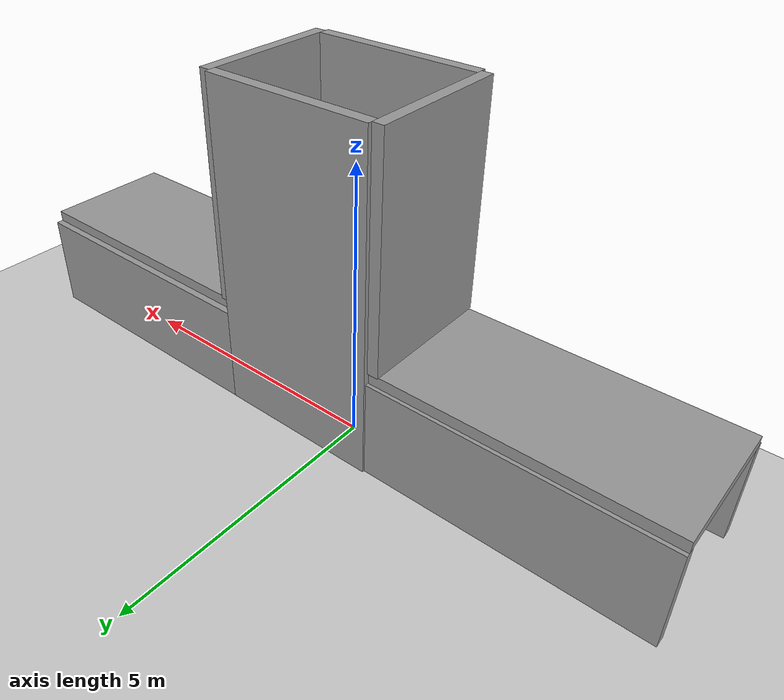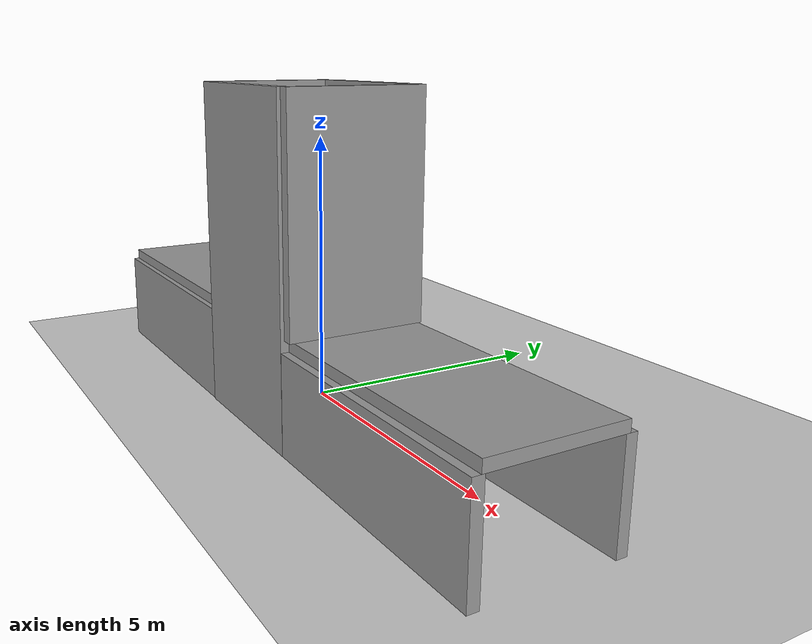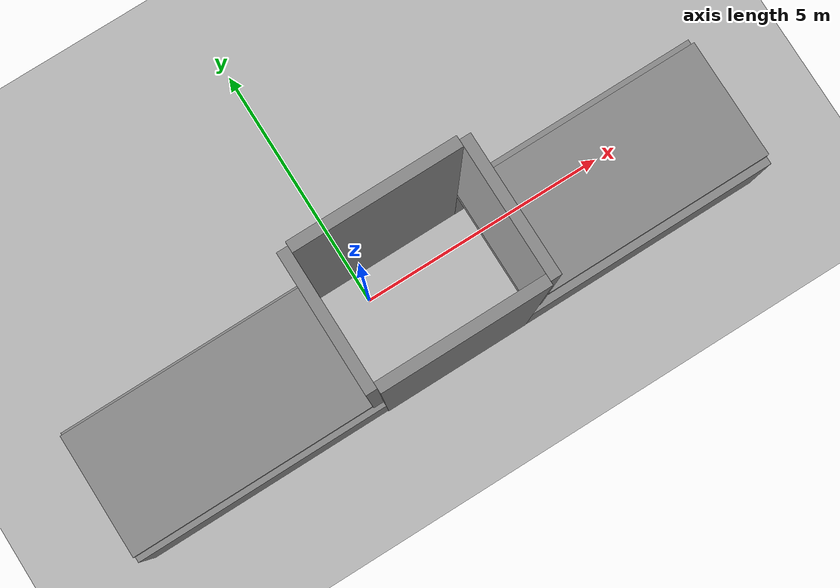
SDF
<sdf version="1.6">
 <world name="default">
  <light name="sun" type="directional">
   <pose>0 0 10 0 -0 0</pose>
   <diffuse>0.8 0.8 0.8 1</diffuse>
   <specular>0.2 0.2 0.2 1</specular>
   <attenuation>
    <range>1000</range>
    <constant>0.9</constant>
    <linear>0.01</linear>
    <quadratic>0.001</quadratic>
   </attenuation>
   <direction>-0.5 0.1 -0.9</direction>
  </light>
  <model name="ground_plane">
   <static>1</static>
   <link name="link">
    <collision name="collision">
     <geometry><plane><normal>0 0 1</normal><size>100 100</size></plane></geometry>
     <surface><friction><ode><mu>100</mu><mu2>50</mu2></ode></friction></surface>
    </collision>
    <visual name="visual">
     <cast_shadows>0</cast_shadows>
     <geometry><plane><normal>0 0 1</normal><size>100 100</size></plane></geometry>
     <material>
      <script><uri>file://media/materials/scripts/gazebo.material</uri><name>Gazebo/Grey</name></script>
     </material>
    </visual>
   </link>
  </model>
  <gravity>0 0 -9.8</gravity>
  <magnetic_field>6e-06 2.3e-05 -4.2e-05</magnetic_field>
  <atmosphere type="adiabatic"/>
  <physics name="default_physics" default="0" type="ode">
   <max_step_size>0.002</max_step_size>
   <real_time_factor>1</real_time_factor>
   <real_time_update_rate>500</real_time_update_rate>
  </physics>
  <scene><ambient>0.4 0.4 0.4 1</ambient><background>0.7 0.7 0.7 1</background><shadows>1</shadows></scene>
  <spherical_coordinates>
   <surface_model>EARTH_WGS84</surface_model>
   <latitude_deg>0</latitude_deg>
   <longitude_deg>0</longitude_deg>
   <elevation>0</elevation>
   <heading_deg>0</heading_deg>
  </spherical_coordinates>
  <model name="tunel">
   <link name="link_0">
    <inertial>
     <mass>1</mass>
     <inertia>
      <ixx>0.166667</ixx>
      <ixy>0</ixy>
      <ixz>0</ixz>
      <iyy>0.166667</iyy>
      <iyz>0</iyz>
      <izz>0.166667</izz>
     </inertia>
    </inertial>
    <pose>4 1.217 -1.24 -0 -0 -0</pose>
    <visual name="visual">
     <geometry><box><size>5 0.2 1.8</size></box></geometry>
     <material>
      <lighting>1</lighting>
      <script><uri>file://media/materials/scripts/gazebo.material</uri><name>Gazebo/Grey</name></script>
      <shader type="pixel"><normal_map>__default__</normal_map></shader>
      <ambient>0.3 0.3 0.3 1</ambient>
      <diffuse>0.7 0.7 0.7 1</diffuse>
      <specular>0.01 0.01 0.01 1</specular>
      <emissive>0 0 0 1</emissive>
     </material>
    </visual>
    <collision name="collision">
     <geometry><box><size>5 0.2 1.8</size></box></geometry>
     <surface>
      <friction>
       <ode><mu>1</mu><mu2>1</mu2><fdir1>0 0 0</fdir1><slip1>0</slip1><slip2>0</slip2></ode>
       <torsional>
        <coefficient>1</coefficient>
        <patch_radius>0</patch_radius>
        <surface_radius>0</surface_radius>
        <use_patch_radius>1</use_patch_radius>
        <ode><slip>0</slip></ode>
       </torsional>
      </friction>
      <bounce><restitution_coefficient>0</restitution_coefficient><threshold>1e+06</threshold></bounce>
      <contact>
       <collide_without_contact>0</collide_without_contact>
       <collide_without_contact_bitmask>1</collide_without_contact_bitmask>
       <collide_bitmask>1</collide_bitmask>
       <ode>
        <soft_cfm>0</soft_cfm>
        <soft_erp>0.2</soft_erp>
        <kp>1e+13</kp>
        <kd>1</kd>
        <max_vel>0.01</max_vel>
        <min_depth>0</min_depth>
       </ode>
       <bullet>
        <split_impulse>1</split_impulse>
        <split_impulse_penetration_threshold>-0.01</split_impulse_penetration_threshold>
        <soft_cfm>0</soft_cfm>
        <soft_erp>0.2</soft_erp>
        <kp>1e+13</kp>
        <kd>1</kd>
       </bullet>
      </contact>
     </surface>
    </collision>
   </link>
   <link name="link_0_clone">
    <inertial>
     <mass>1</mass>
     <inertia>
      <ixx>0.166667</ixx>
      <ixy>0</ixy>
      <ixz>0</ixz>
      <iyy>0.166667</iyy>
      <iyz>0</iyz>
      <izz>0.166667</izz>
     </inertia>
    </inertial>
    <pose>4 -1.23671 -1.24 -0 -0 -0</pose>
    <visual name="visual">
     <geometry><box><size>5 0.2 1.8</size></box></geometry>
     <material>
      <lighting>1</lighting>
      <script><uri>file://media/materials/scripts/gazebo.material</uri><name>Gazebo/Grey</name></script>
      <shader type="pixel"><normal_map>__default__</normal_map></shader>
      <ambient>0.3 0.3 0.3 1</ambient>
      <diffuse>0.7 0.7 0.7 1</diffuse>
      <specular>0.01 0.01 0.01 1</specular>
      <emissive>0 0 0 1</emissive>
     </material>
    </visual>
    <collision name="collision">
     <geometry><box><size>5 0.2 1.8</size></box></geometry>
     <surface>
      <friction>
       <ode><mu>1</mu><mu2>1</mu2><fdir1>0 0 0</fdir1><slip1>0</slip1><slip2>0</slip2></ode>
       <torsional>
        <coefficient>1</coefficient>
        <patch_radius>0</patch_radius>
        <surface_radius>0</surface_radius>
        <use_patch_radius>1</use_patch_radius>
        <ode><slip>0</slip></ode>
       </torsional>
      </friction>
      <bounce><restitution_coefficient>0</restitution_coefficient><threshold>1e+06</threshold></bounce>
      <contact>
       <collide_without_contact>0</collide_without_contact>
       <collide_without_contact_bitmask>1</collide_without_contact_bitmask>
       <collide_bitmask>1</collide_bitmask>
       <ode>
        <soft_cfm>0</soft_cfm>
        <soft_erp>0.2</soft_erp>
        <kp>1e+13</kp>
        <kd>1</kd>
        <max_vel>0.01</max_vel>
        <min_depth>0</min_depth>
       </ode>
       <bullet>
        <split_impulse>1</split_impulse>
        <split_impulse_penetration_threshold>-0.01</split_impulse_penetration_threshold>
        <soft_cfm>0</soft_cfm>
        <soft_erp>0.2</soft_erp>
        <kp>1e+13</kp>
        <kd>1</kd>
       </bullet>
      </contact>
     </surface>
    </collision>
   </link>
   <link name="link_0_clone_0">
    <inertial>
     <mass>1</mass>
     <inertia>
      <ixx>0.166667</ixx>
      <ixy>0</ixy>
      <ixz>0</ixz>
      <iyy>0.166667</iyy>
      <iyz>0</iyz>
      <izz>0.166667</izz>
     </inertia>
    </inertial>
    <pose>-4 1.18179 -1.24 -0 -0 -0</pose>
    <visual name="visual">
     <geometry><box><size>5 0.2 1.8</size></box></geometry>
     <material>
      <lighting>1</lighting>
      <script><uri>file://media/materials/scripts/gazebo.material</uri><name>Gazebo/Grey</name></script>
      <shader type="pixel"><normal_map>__default__</normal_map></shader>
      <ambient>0.3 0.3 0.3 1</ambient>
      <diffuse>0.7 0.7 0.7 1</diffuse>
      <specular>0.01 0.01 0.01 1</specular>
      <emissive>0 0 0 1</emissive>
     </material>
    </visual>
    <collision name="collision">
     <geometry><box><size>5 0.2 1.8</size></box></geometry>
     <surface>
      <friction>
       <ode><mu>1</mu><mu2>1</mu2><fdir1>0 0 0</fdir1><slip1>0</slip1><slip2>0</slip2></ode>
       <torsional>
        <coefficient>1</coefficient>
        <patch_radius>0</patch_radius>
        <surface_radius>0</surface_radius>
        <use_patch_radius>1</use_patch_radius>
        <ode><slip>0</slip></ode>
       </torsional>
      </friction>
      <bounce><restitution_coefficient>0</restitution_coefficient><threshold>1e+06</threshold></bounce>
      <contact>
       <collide_without_contact>0</collide_without_contact>
       <collide_without_contact_bitmask>1</collide_without_contact_bitmask>
       <collide_bitmask>1</collide_bitmask>
       <ode>
        <soft_cfm>0</soft_cfm>
        <soft_erp>0.2</soft_erp>
        <kp>1e+13</kp>
        <kd>1</kd>
        <max_vel>0.01</max_vel>
        <min_depth>0</min_depth>
       </ode>
       <bullet>
        <split_impulse>1</split_impulse>
        <split_impulse_penetration_threshold>-0.01</split_impulse_penetration_threshold>
        <soft_cfm>0</soft_cfm>
        <soft_erp>0.2</soft_erp>
        <kp>1e+13</kp>
        <kd>1</kd>
       </bullet>
      </contact>
     </surface>
    </collision>
   </link>
   <link name="link_0_clone_clone">
    <inertial>
     <mass>1</mass>
     <inertia>
      <ixx>0.166667</ixx>
      <ixy>0</ixy>
      <ixz>0</ixz>
      <iyy>0.166667</iyy>
      <iyz>0</iyz>
      <izz>0.166667</izz>
     </inertia>
    </inertial>
    <pose>-4 -1.22429 -1.24 -0 -0 -0</pose>
    <visual name="visual">
     <geometry><box><size>5 0.2 1.8</size></box></geometry>
     <material>
      <lighting>1</lighting>
      <script><uri>file://media/materials/scripts/gazebo.material</uri><name>Gazebo/Grey</name></script>
      <shader type="pixel"><normal_map>__default__</normal_map></shader>
      <ambient>0.3 0.3 0.3 1</ambient>
      <diffuse>0.7 0.7 0.7 1</diffuse>
      <specular>0.01 0.01 0.01 1</specular>
      <emissive>0 0 0 1</emissive>
     </material>
    </visual>
    <collision name="collision">
     <geometry><box><size>5 0.2 1.8</size></box></geometry>
     <surface>
      <friction>
       <ode><mu>1</mu><mu2>1</mu2><fdir1>0 0 0</fdir1><slip1>0</slip1><slip2>0</slip2></ode>
       <torsional>
        <coefficient>1</coefficient>
        <patch_radius>0</patch_radius>
        <surface_radius>0</surface_radius>
        <use_patch_radius>1</use_patch_radius>
        <ode><slip>0</slip></ode>
       </torsional>
      </friction>
      <bounce><restitution_coefficient>0</restitution_coefficient><threshold>1e+06</threshold></bounce>
      <contact>
       <collide_without_contact>0</collide_without_contact>
       <collide_without_contact_bitmask>1</collide_without_contact_bitmask>
       <collide_bitmask>1</collide_bitmask>
       <ode>
        <soft_cfm>0</soft_cfm>
        <soft_erp>0.2</soft_erp>
        <kp>1e+13</kp>
        <kd>1</kd>
        <max_vel>0.01</max_vel>
        <min_depth>0</min_depth>
       </ode>
       <bullet>
        <split_impulse>1</split_impulse>
        <split_impulse_penetration_threshold>-0.01</split_impulse_penetration_threshold>
        <soft_cfm>0</soft_cfm>
        <soft_erp>0.2</soft_erp>
        <kp>1e+13</kp>
        <kd>1</kd>
       </bullet>
      </contact>
     </surface>
    </collision>
   </link>
   <link name="link_1">
    <inertial>
     <mass>1.29515</mass>
     <inertia><ixx>0.615602</ixx><ixy>0</ixy><ixz>0</ixz><iyy>2.70255</iyy><iyz>0</iyz><izz>3.30952</izz></inertia>
    </inertial>
    <pose>4 0 -0.24 -0 -0 -0</pose>
    <visual name="visual">
     <geometry><box><size>5 2.37986 0.2</size></box></geometry>
     <material>
      <lighting>1</lighting>
      <script><uri>file://media/materials/scripts/gazebo.material</uri><name>Gazebo/Grey</name></script>
      <shader type="pixel"><normal_map>__default__</normal_map></shader>
      <ambient>0.3 0.3 0.3 1</ambient>
      <diffuse>0.7 0.7 0.7 1</diffuse>
      <specular>0.01 0.01 0.01 1</specular>
      <emissive>0 0 0 1</emissive>
     </material>
    </visual>
    <collision name="collision">
     <geometry><box><size>5 2.37986 0.2</size></box></geometry>
     <surface>
      <friction>
       <ode><mu>1</mu><mu2>1</mu2><fdir1>0 0 0</fdir1><slip1>0</slip1><slip2>0</slip2></ode>
       <torsional>
        <coefficient>1</coefficient>
        <patch_radius>0</patch_radius>
        <surface_radius>0</surface_radius>
        <use_patch_radius>1</use_patch_radius>
        <ode><slip>0</slip></ode>
       </torsional>
      </friction>
      <bounce><restitution_coefficient>0</restitution_coefficient><threshold>1e+06</threshold></bounce>
      <contact>
       <collide_without_contact>0</collide_without_contact>
       <collide_without_contact_bitmask>1</collide_without_contact_bitmask>
       <collide_bitmask>1</collide_bitmask>
       <ode>
        <soft_cfm>0</soft_cfm>
        <soft_erp>0.2</soft_erp>
        <kp>1e+13</kp>
        <kd>1</kd>
        <max_vel>0.01</max_vel>
        <min_depth>0</min_depth>
       </ode>
       <bullet>
        <split_impulse>1</split_impulse>
        <split_impulse_penetration_threshold>-0.01</split_impulse_penetration_threshold>
        <soft_cfm>0</soft_cfm>
        <soft_erp>0.2</soft_erp>
        <kp>1e+13</kp>
        <kd>1</kd>
       </bullet>
      </contact>
     </surface>
    </collision>
   </link>
   <link name="link_1_clone">
    <inertial>
     <mass>1.32237</mass>
     <inertia><ixx>0.655044</ixx><ixy>0</ixy><ixz>0</ixz><iyy>2.75935</iyy><iyz>0</iyz><izz>3.40558</izz></inertia>
    </inertial>
    <pose>-4 -0 -0.24 -0 -0 -0</pose>
    <visual name="visual">
     <geometry><box><size>5 2.42987 0.2</size></box></geometry>
     <material>
      <lighting>1</lighting>
      <script><uri>file://media/materials/scripts/gazebo.material</uri><name>Gazebo/Grey</name></script>
      <shader type="pixel"><normal_map>__default__</normal_map></shader>
      <ambient>0.3 0.3 0.3 1</ambient>
      <diffuse>0.7 0.7 0.7 1</diffuse>
      <specular>0.01 0.01 0.01 1</specular>
      <emissive>0 0 0 1</emissive>
     </material>
    </visual>
    <collision name="collision">
     <geometry><box><size>5 2.42987 0.2</size></box></geometry>
     <surface>
      <friction>
       <ode><mu>1</mu><mu2>1</mu2><fdir1>0 0 0</fdir1><slip1>0</slip1><slip2>0</slip2></ode>
       <torsional>
        <coefficient>1</coefficient>
        <patch_radius>0</patch_radius>
        <surface_radius>0</surface_radius>
        <use_patch_radius>1</use_patch_radius>
        <ode><slip>0</slip></ode>
       </torsional>
      </friction>
      <bounce><restitution_coefficient>0</restitution_coefficient><threshold>1e+06</threshold></bounce>
      <contact>
       <collide_without_contact>0</collide_without_contact>
       <collide_without_contact_bitmask>1</collide_without_contact_bitmask>
       <collide_bitmask>1</collide_bitmask>
       <ode>
        <soft_cfm>0</soft_cfm>
        <soft_erp>0.2</soft_erp>
        <kp>1e+13</kp>
        <kd>1</kd>
        <max_vel>0.01</max_vel>
        <min_depth>0</min_depth>
       </ode>
       <bullet>
        <split_impulse>1</split_impulse>
        <split_impulse_penetration_threshold>-0.01</split_impulse_penetration_threshold>
        <soft_cfm>0</soft_cfm>
        <soft_erp>0.2</soft_erp>
        <kp>1e+13</kp>
        <kd>1</kd>
       </bullet>
      </contact>
     </surface>
    </collision>
   </link>
   <link name="link_2">
    <inertial>
     <mass>2.08237</mass>
     <inertia><ixx>6.19248</ixx><ixy>0</ixy><ixz>0</ixz><iyy>7.0406</iyy><iyz>0</iyz><izz>0.856734</izz></inertia>
    </inertial>
    <pose>-0 -1.23923 0.86 -0 -0 -0</pose>
    <visual name="visual">
     <geometry><box><size>3 0.2 6</size></box></geometry>
     <material>
      <lighting>1</lighting>
      <script><uri>file://media/materials/scripts/gazebo.material</uri><name>Gazebo/Grey</name></script>
      <shader type="pixel"><normal_map>__default__</normal_map></shader>
      <ambient>0.3 0.3 0.3 1</ambient>
      <diffuse>0.7 0.7 0.7 1</diffuse>
      <specular>0.01 0.01 0.01 1</specular>
      <emissive>0 0 0 1</emissive>
     </material>
    </visual>
    <collision name="collision">
     <geometry><box><size>3 0.2 6</size></box></geometry>
     <surface>
      <friction>
       <ode><mu>1</mu><mu2>1</mu2><fdir1>0 0 0</fdir1><slip1>0</slip1><slip2>0</slip2></ode>
       <torsional>
        <coefficient>1</coefficient>
        <patch_radius>0</patch_radius>
        <surface_radius>0</surface_radius>
        <use_patch_radius>1</use_patch_radius>
        <ode><slip>0</slip></ode>
       </torsional>
      </friction>
      <bounce><restitution_coefficient>0</restitution_coefficient><threshold>1e+06</threshold></bounce>
      <contact>
       <collide_without_contact>0</collide_without_contact>
       <collide_without_contact_bitmask>1</collide_without_contact_bitmask>
       <collide_bitmask>1</collide_bitmask>
       <ode>
        <soft_cfm>0</soft_cfm>
        <soft_erp>0.2</soft_erp>
        <kp>1e+13</kp>
        <kd>1</kd>
        <max_vel>0.01</max_vel>
        <min_depth>0</min_depth>
       </ode>
       <bullet>
        <split_impulse>1</split_impulse>
        <split_impulse_penetration_threshold>-0.01</split_impulse_penetration_threshold>
        <soft_cfm>0</soft_cfm>
        <soft_erp>0.2</soft_erp>
        <kp>1e+13</kp>
        <kd>1</kd>
       </bullet>
      </contact>
     </surface>
    </collision>
   </link>
   <link name="link_2_clone">
    <inertial>
     <mass>2.08237</mass>
     <inertia><ixx>6.19248</ixx><ixy>0</ixy><ixz>0</ixz><iyy>7.0406</iyy><iyz>0</iyz><izz>0.856734</izz></inertia>
    </inertial>
    <pose>0 1.2186 0.86 -0 -0 -0</pose>
    <visual name="visual">
     <geometry><box><size>3 0.2 6</size></box></geometry>
     <material>
      <lighting>1</lighting>
      <script><uri>file://media/materials/scripts/gazebo.material</uri><name>Gazebo/Grey</name></script>
      <shader type="pixel"><normal_map>__default__</normal_map></shader>
      <ambient>0.3 0.3 0.3 1</ambient>
      <diffuse>0.7 0.7 0.7 1</diffuse>
      <specular>0.01 0.01 0.01 1</specular>
      <emissive>0 0 0 1</emissive>
     </material>
    </visual>
    <collision name="collision">
     <geometry><box><size>3 0.2 6</size></box></geometry>
     <surface>
      <friction>
       <ode><mu>1</mu><mu2>1</mu2><fdir1>0 0 0</fdir1><slip1>0</slip1><slip2>0</slip2></ode>
       <torsional>
        <coefficient>1</coefficient>
        <patch_radius>0</patch_radius>
        <surface_radius>0</surface_radius>
        <use_patch_radius>1</use_patch_radius>
        <ode><slip>0</slip></ode>
       </torsional>
      </friction>
      <bounce><restitution_coefficient>0</restitution_coefficient><threshold>1e+06</threshold></bounce>
      <contact>
       <collide_without_contact>0</collide_without_contact>
       <collide_without_contact_bitmask>1</collide_without_contact_bitmask>
       <collide_bitmask>1</collide_bitmask>
       <ode>
        <soft_cfm>0</soft_cfm>
        <soft_erp>0.2</soft_erp>
        <kp>1e+13</kp>
        <kd>1</kd>
        <max_vel>0.01</max_vel>
        <min_depth>0</min_depth>
       </ode>
       <bullet>
        <split_impulse>1</split_impulse>
        <split_impulse_penetration_threshold>-0.01</split_impulse_penetration_threshold>
        <soft_cfm>0</soft_cfm>
        <soft_erp>0.2</soft_erp>
        <kp>1e+13</kp>
        <kd>1</kd>
       </bullet>
      </contact>
     </surface>
    </collision>
   </link>
   <link name="link_3">
    <inertial>
     <mass>1.83697</mass>
     <inertia><ixx>3.40291</ixx><ixy>0</ixy><ixz>0</ixz><iyy>2.45541</iyy><iyz>0</iyz><izz>0.959746</izz></inertia>
    </inertial>
    <pose>-1.6 -0 1.86 -0 -0 -0</pose>
    <visual name="visual">
     <geometry><box><size>0.2 2.49591 4</size></box></geometry>
     <material>
      <lighting>1</lighting>
      <script><uri>file://media/materials/scripts/gazebo.material</uri><name>Gazebo/Grey</name></script>
      <shader type="pixel"><normal_map>__default__</normal_map></shader>
      <ambient>0.3 0.3 0.3 1</ambient>
      <diffuse>0.7 0.7 0.7 1</diffuse>
      <specular>0.01 0.01 0.01 1</specular>
      <emissive>0 0 0 1</emissive>
     </material>
    </visual>
    <collision name="collision">
     <geometry><box><size>0.2 2.49591 4</size></box></geometry>
     <surface>
      <friction>
       <ode><mu>1</mu><mu2>1</mu2><fdir1>0 0 0</fdir1><slip1>0</slip1><slip2>0</slip2></ode>
       <torsional>
        <coefficient>1</coefficient>
        <patch_radius>0</patch_radius>
        <surface_radius>0</surface_radius>
        <use_patch_radius>1</use_patch_radius>
        <ode><slip>0</slip></ode>
       </torsional>
      </friction>
      <bounce><restitution_coefficient>0</restitution_coefficient><threshold>1e+06</threshold></bounce>
      <contact>
       <collide_without_contact>0</collide_without_contact>
       <collide_without_contact_bitmask>1</collide_without_contact_bitmask>
       <collide_bitmask>1</collide_bitmask>
       <ode>
        <soft_cfm>0</soft_cfm>
        <soft_erp>0.2</soft_erp>
        <kp>1e+13</kp>
        <kd>1</kd>
        <max_vel>0.01</max_vel>
        <min_depth>0</min_depth>
       </ode>
       <bullet>
        <split_impulse>1</split_impulse>
        <split_impulse_penetration_threshold>-0.01</split_impulse_penetration_threshold>
        <soft_cfm>0</soft_cfm>
        <soft_erp>0.2</soft_erp>
        <kp>1e+13</kp>
        <kd>1</kd>
       </bullet>
      </contact>
     </surface>
    </collision>
   </link>
   <link name="link_3_clone">
    <inertial>
     <mass>1.85061</mass>
     <inertia><ixx>3.44252</ixx><ixy>0</ixy><ixz>0</ixz><iyy>2.47365</iyy><iyz>0</iyz><izz>0.981207</izz></inertia>
    </inertial>
    <pose>1.6 -0.015774 1.86 -0 -0 -0</pose>
    <visual name="visual">
     <geometry><box><size>0.2 2.51445 4</size></box></geometry>
     <material>
      <lighting>1</lighting>
      <script><uri>file://media/materials/scripts/gazebo.material</uri><name>Gazebo/Grey</name></script>
      <shader type="pixel"><normal_map>__default__</normal_map></shader>
      <ambient>0.3 0.3 0.3 1</ambient>
      <diffuse>0.7 0.7 0.7 1</diffuse>
      <specular>0.01 0.01 0.01 1</specular>
      <emissive>0 0 0 1</emissive>
     </material>
    </visual>
    <collision name="collision">
     <geometry><box><size>0.2 2.51445 4</size></box></geometry>
     <surface>
      <friction>
       <ode><mu>1</mu><mu2>1</mu2><fdir1>0 0 0</fdir1><slip1>0</slip1><slip2>0</slip2></ode>
       <torsional>
        <coefficient>1</coefficient>
        <patch_radius>0</patch_radius>
        <surface_radius>0</surface_radius>
        <use_patch_radius>1</use_patch_radius>
        <ode><slip>0</slip></ode>
       </torsional>
      </friction>
      <bounce><restitution_coefficient>0</restitution_coefficient><threshold>1e+06</threshold></bounce>
      <contact>
       <collide_without_contact>0</collide_without_contact>
       <collide_without_contact_bitmask>1</collide_without_contact_bitmask>
       <collide_bitmask>1</collide_bitmask>
       <ode>
        <soft_cfm>0</soft_cfm>
        <soft_erp>0.2</soft_erp>
        <kp>1e+13</kp>
        <kd>1</kd>
        <max_vel>0.01</max_vel>
        <min_depth>0</min_depth>
       </ode>
       <bullet>
        <split_impulse>1</split_impulse>
        <split_impulse_penetration_threshold>-0.01</split_impulse_penetration_threshold>
        <soft_cfm>0</soft_cfm>
        <soft_erp>0.2</soft_erp>
        <kp>1e+13</kp>
        <kd>1</kd>
       </bullet>
      </contact>
     </surface>
    </collision>
   </link>
   <joint name="link_0_JOINT_2" type="fixed">
    <parent>link_0</parent>
    <child>link_2_clone</child>
    <physics>
     <ode><limit><cfm>0</cfm><erp>0.2</erp></limit><suspension><cfm>0</cfm><erp>0.2</erp></suspension></ode>
    </physics>
   </joint>
   <joint name="link_0_JOINT_3" type="fixed">
    <parent>link_0_clone</parent>
    <child>link_2</child>
    <physics>
     <ode><limit><cfm>0</cfm><erp>0.2</erp></limit><suspension><cfm>0</cfm><erp>0.2</erp></suspension></ode>
    </physics>
   </joint>
   <joint name="link_0_clone_0_JOINT_4" type="fixed">
    <parent>link_0_clone_0</parent>
    <child>link_1_clone</child>
    <physics>
     <ode><limit><cfm>0</cfm><erp>0.2</erp></limit><suspension><cfm>0</cfm><erp>0.2</erp></suspension></ode>
    </physics>
   </joint>
   <joint name="link_0_clone_0_JOINT_5" type="fixed">
    <parent>link_0_clone_0</parent>
    <child>link_2_clone</child>
    <physics>
     <ode><limit><cfm>0</cfm><erp>0.2</erp></limit><suspension><cfm>0</cfm><erp>0.2</erp></suspension></ode>
    </physics>
   </joint>
   <joint name="link_0_clone_clone_JOINT_6" type="fixed">
    <parent>link_0_clone_clone</parent>
    <child>link_1_clone</child>
    <physics>
     <ode><limit><cfm>0</cfm><erp>0.2</erp></limit><suspension><cfm>0</cfm><erp>0.2</erp></suspension></ode>
    </physics>
   </joint>
   <joint name="link_0_clone_clone_JOINT_7" type="fixed">
    <parent>link_0_clone_clone</parent>
    <child>link_2</child>
    <physics>
     <ode><limit><cfm>0</cfm><erp>0.2</erp></limit><suspension><cfm>0</cfm><erp>0.2</erp></suspension></ode>
    </physics>
   </joint>
   <joint name="link_1_JOINT_0" type="fixed">
    <parent>link_1</parent>
    <child>link_0_clone</child>
    <physics>
     <ode><limit><cfm>0</cfm><erp>0.2</erp></limit><suspension><cfm>0</cfm><erp>0.2</erp></suspension></ode>
    </physics>
   </joint>
   <joint name="link_1_JOINT_1" type="fixed">
    <parent>link_1</parent>
    <child>link_0</child>
    <physics>
     <ode><limit><cfm>0</cfm><erp>0.2</erp></limit><suspension><cfm>0</cfm><erp>0.2</erp></suspension></ode>
    </physics>
   </joint>
   <joint name="link_2_JOINT_10" type="fixed">
    <parent>link_2</parent>
    <child>link_3_clone</child>
    <physics>
     <ode><limit><cfm>0</cfm><erp>0.2</erp></limit><suspension><cfm>0</cfm><erp>0.2</erp></suspension></ode>
    </physics>
   </joint>
   <joint name="link_2_JOINT_9" type="fixed">
    <parent>link_2</parent>
    <child>link_3</child>
    <physics>
     <ode><limit><cfm>0</cfm><erp>0.2</erp></limit><suspension><cfm>0</cfm><erp>0.2</erp></suspension></ode>
    </physics>
   </joint>
   <joint name="link_2_clone_JOINT_11" type="fixed">
    <parent>link_2_clone</parent>
    <child>link_3_clone</child>
    <physics>
     <ode><limit><cfm>0</cfm><erp>0.2</erp></limit><suspension><cfm>0</cfm><erp>0.2</erp></suspension></ode>
    </physics>
   </joint>
   <joint name="link_2_clone_JOINT_8" type="fixed">
    <parent>link_2_clone</parent>
    <child>link_3</child>
    <physics>
     <ode><limit><cfm>0</cfm><erp>0.2</erp></limit><suspension><cfm>0</cfm><erp>0.2</erp></suspension></ode>
    </physics>
   </joint>
   <static>1</static>
   <pose>0.713063 -0.589668 2.14 0 -1e-06 0.001953</pose>
  </model>
  <plugin name="gazebo_octomap" filename="libBuildOctomapPlugin.so"/>
  <plugin name="ros_link_attacher_plugin" filename="libgazebo_ros_link_attacher_plugin.so"/>
 </world>
</sdf>
